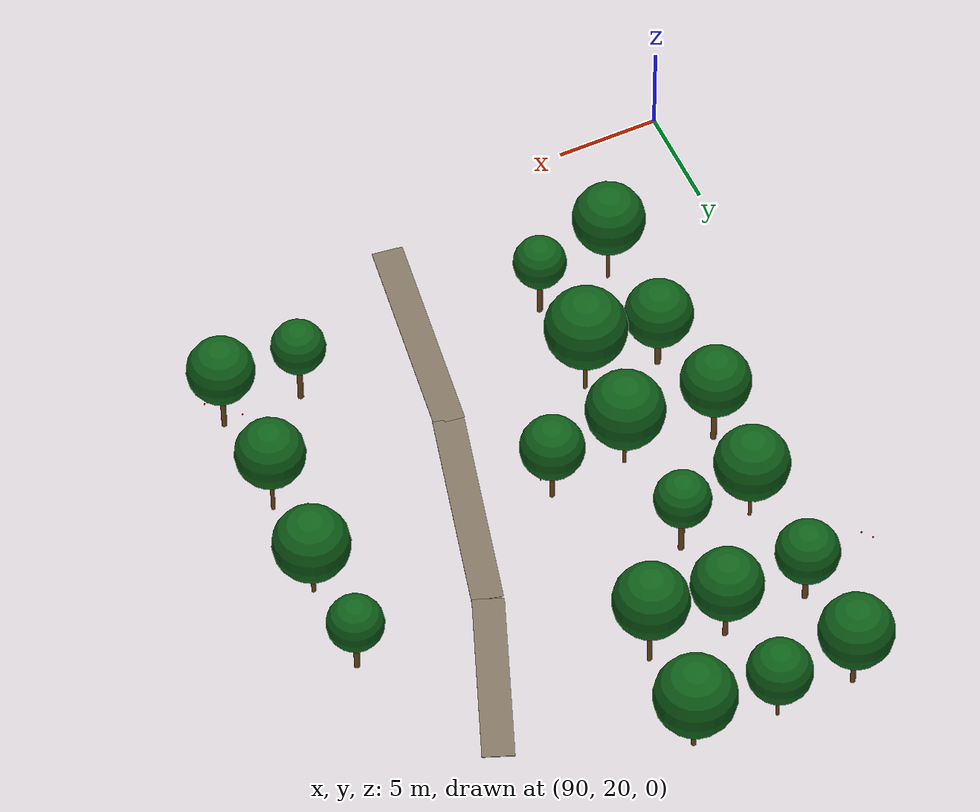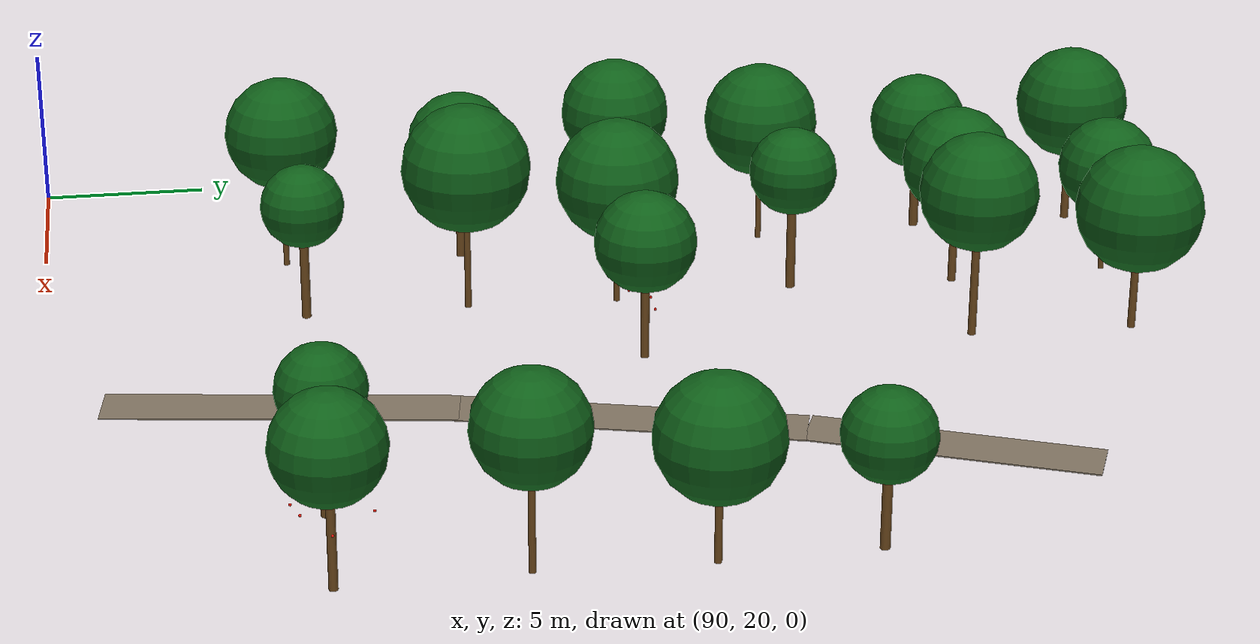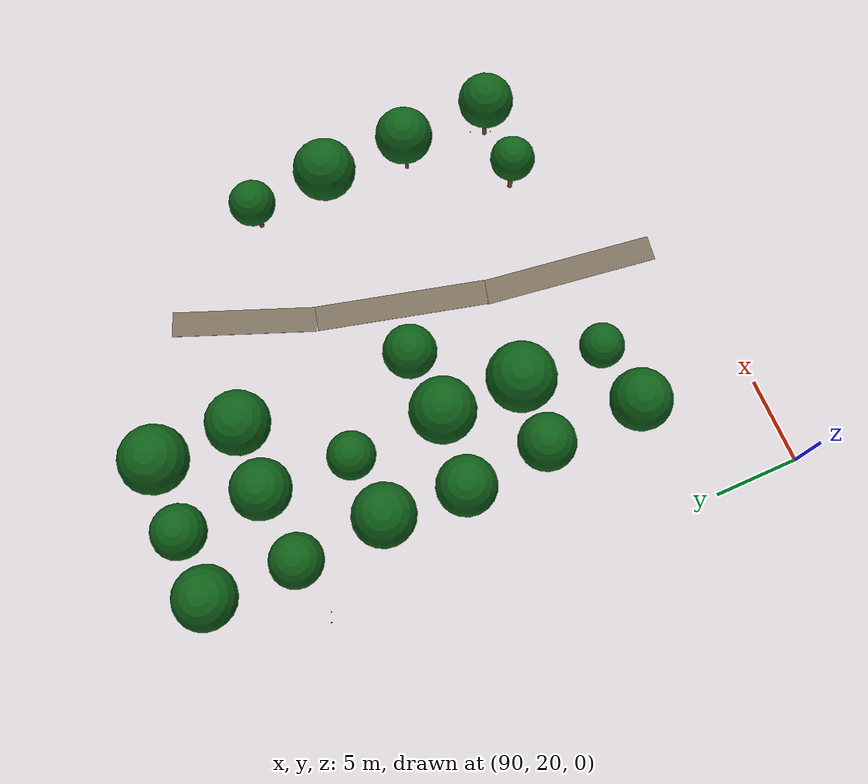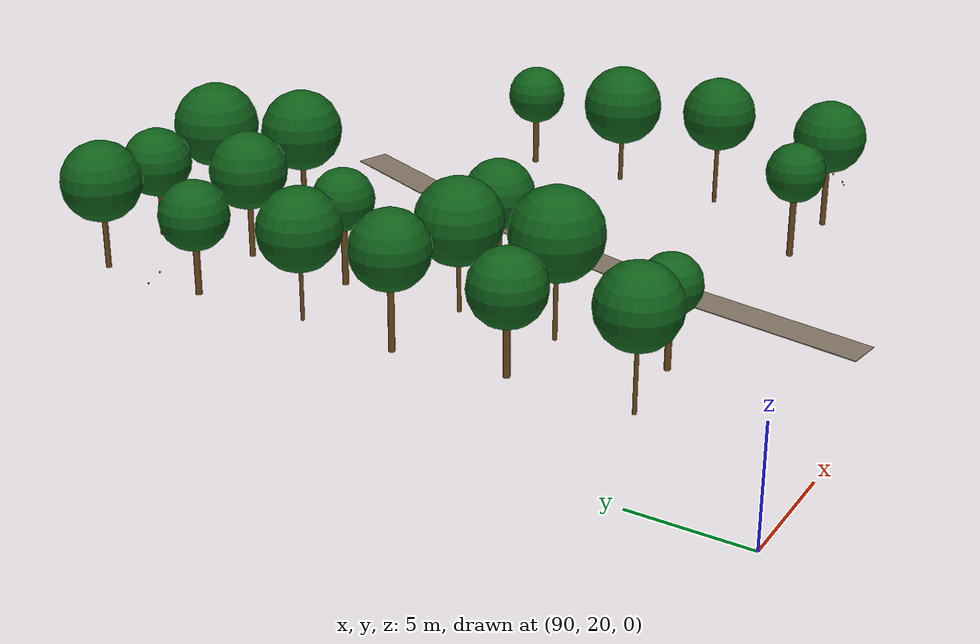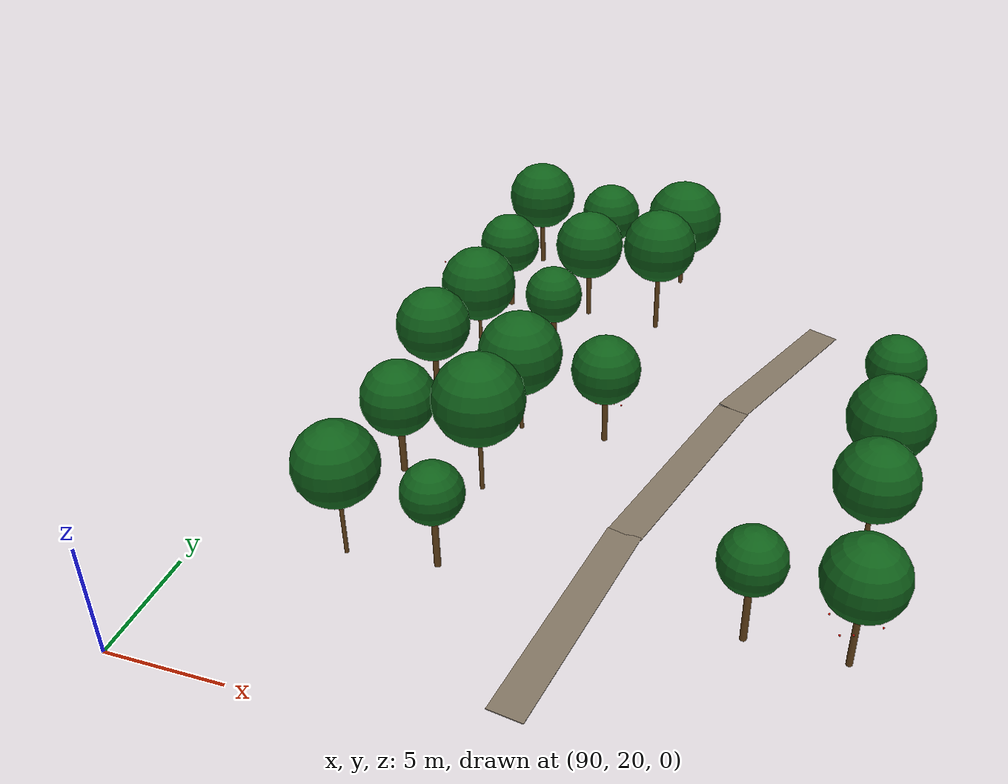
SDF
<sdf version="1.9">
 <world name="cheongsong_orchard">
  <model name="road_36">
   <static>true</static>
   <pose>105.6 26.9 0.02 0 0 1.4321</pose>
   <link name="link">
    <collision name="collision">
     <geometry><box><size>10.4 1.5 0.04</size></box></geometry>
     <surface><friction><ode><mu>0.9</mu><mu2>0.9</mu2></ode></friction></surface>
    </collision>
    <visual name="visual">
     <geometry><box><size>10.4 1.5 0.04</size></box></geometry>
     <material><ambient>0.4 0.35 0.28 1</ambient><diffuse>0.5 0.45 0.38 1</diffuse></material>
    </visual>
   </link>
  </model>
  <model name="road_37">
   <static>true</static>
   <pose>107.6 36.9 0.02 0 0 1.3204</pose>
   <link name="link">
    <collision name="collision">
     <geometry><box><size>10.2 1.5 0.04</size></box></geometry>
     <surface><friction><ode><mu>0.9</mu><mu2>0.9</mu2></ode></friction></surface>
    </collision>
    <visual name="visual">
     <geometry><box><size>10.2 1.5 0.04</size></box></geometry>
     <material><ambient>0.4 0.35 0.28 1</ambient><diffuse>0.5 0.45 0.38 1</diffuse></material>
    </visual>
   </link>
  </model>
  <model name="road_38">
   <static>true</static>
   <pose>110.4 45.8 0.02 0 0 1.1956</pose>
   <link name="link">
    <collision name="collision">
     <geometry><box><size>8.5 1.5 0.04</size></box></geometry>
     <surface><friction><ode><mu>0.9</mu><mu2>0.9</mu2></ode></friction></surface>
    </collision>
    <visual name="visual">
     <geometry><box><size>8.5 1.5 0.04</size></box></geometry>
     <material><ambient>0.4 0.35 0.28 1</ambient><diffuse>0.5 0.45 0.38 1</diffuse></material>
    </visual>
   </link>
  </model>
  <model name="apple_tree_1517">
   <static>true</static>
   <pose>96.04 27.54 0 0 0 0</pose>
   <link name="link">
    <collision name="trunk_col">
     <pose>0 0 1.39 0 0 0</pose>
     <geometry><cylinder><radius>0.089</radius><length>2.77</length></cylinder></geometry>
    </collision>
    <visual name="trunk_vis">
     <pose>0 0 1.39 0 0 0</pose>
     <geometry><cylinder><radius>0.089</radius><length>2.77</length></cylinder></geometry>
     <material><ambient>0.35 0.22 0.08 1</ambient><diffuse>0.45 0.30 0.12 1</diffuse></material>
    </visual>
    <collision name="canopy_col">
     <pose>0 0 4.51 0 0 0</pose>
     <geometry><sphere><radius>1.74</radius></sphere></geometry>
    </collision>
    <visual name="canopy_vis">
     <pose>0 0 4.51 0 0 0</pose>
     <geometry><sphere><radius>1.74</radius></sphere></geometry>
     <material><ambient>0.04 0.28 0.06 1</ambient><diffuse>0.06 0.38 0.10 1</diffuse></material>
    </visual>
   </link>
  </model>
  <model name="apple_tree_1518">
   <static>true</static>
   <pose>99.79 27.97 0 0 0 0</pose>
   <link name="link">
    <collision name="trunk_col">
     <pose>0 0 1.23 0 0 0</pose>
     <geometry><cylinder><radius>0.139</radius><length>2.46</length></cylinder></geometry>
    </collision>
    <visual name="trunk_vis">
     <pose>0 0 1.23 0 0 0</pose>
     <geometry><cylinder><radius>0.139</radius><length>2.46</length></cylinder></geometry>
     <material><ambient>0.35 0.22 0.08 1</ambient><diffuse>0.45 0.30 0.12 1</diffuse></material>
    </visual>
    <collision name="canopy_col">
     <pose>0 0 3.72 0 0 0</pose>
     <geometry><sphere><radius>1.27</radius></sphere></geometry>
    </collision>
    <visual name="canopy_vis">
     <pose>0 0 3.72 0 0 0</pose>
     <geometry><sphere><radius>1.27</radius></sphere></geometry>
     <material><ambient>0.04 0.28 0.06 1</ambient><diffuse>0.06 0.38 0.10 1</diffuse></material>
    </visual>
   </link>
  </model>
  <model name="apple_tree_1519">
   <static>true</static>
   <pose>112.00 27.85 0 0 0 0</pose>
   <link name="link">
    <collision name="trunk_col">
     <pose>0 0 1.31 0 0 0</pose>
     <geometry><cylinder><radius>0.141</radius><length>2.62</length></cylinder></geometry>
    </collision>
    <visual name="trunk_vis">
     <pose>0 0 1.31 0 0 0</pose>
     <geometry><cylinder><radius>0.141</radius><length>2.62</length></cylinder></geometry>
     <material><ambient>0.35 0.22 0.08 1</ambient><diffuse>0.45 0.30 0.12 1</diffuse></material>
    </visual>
    <collision name="canopy_col">
     <pose>0 0 3.92 0 0 0</pose>
     <geometry><sphere><radius>1.30</radius></sphere></geometry>
    </collision>
    <visual name="canopy_vis">
     <pose>0 0 3.92 0 0 0</pose>
     <geometry><sphere><radius>1.30</radius></sphere></geometry>
     <material><ambient>0.04 0.28 0.06 1</ambient><diffuse>0.06 0.38 0.10 1</diffuse></material>
    </visual>
   </link>
  </model>
  <model name="apple_tree_1520">
   <static>true</static>
   <pose>115.86 27.82 0 0 0 0</pose>
   <link name="link">
    <collision name="trunk_col">
     <pose>0 0 1.32 0 0 0</pose>
     <geometry><cylinder><radius>0.129</radius><length>2.65</length></cylinder></geometry>
    </collision>
    <visual name="trunk_vis">
     <pose>0 0 1.32 0 0 0</pose>
     <geometry><cylinder><radius>0.129</radius><length>2.65</length></cylinder></geometry>
     <material><ambient>0.35 0.22 0.08 1</ambient><diffuse>0.45 0.30 0.12 1</diffuse></material>
    </visual>
    <collision name="canopy_col">
     <pose>0 0 4.26 0 0 0</pose>
     <geometry><sphere><radius>1.61</radius></sphere></geometry>
    </collision>
    <visual name="canopy_vis">
     <pose>0 0 4.26 0 0 0</pose>
     <geometry><sphere><radius>1.61</radius></sphere></geometry>
     <material><ambient>0.04 0.28 0.06 1</ambient><diffuse>0.06 0.38 0.10 1</diffuse></material>
    </visual>
   </link>
  </model>
  <model name="apple_tree_1572">
   <static>true</static>
   <pose>96.08 33.07 0 0 0 0</pose>
   <link name="link">
    <collision name="trunk_col">
     <pose>0 0 1.12 0 0 0</pose>
     <geometry><cylinder><radius>0.149</radius><length>2.23</length></cylinder></geometry>
    </collision>
    <visual name="trunk_vis">
     <pose>0 0 1.12 0 0 0</pose>
     <geometry><cylinder><radius>0.149</radius><length>2.23</length></cylinder></geometry>
     <material><ambient>0.35 0.22 0.08 1</ambient><diffuse>0.45 0.30 0.12 1</diffuse></material>
    </visual>
    <collision name="canopy_col">
     <pose>0 0 3.86 0 0 0</pose>
     <geometry><sphere><radius>1.63</radius></sphere></geometry>
    </collision>
    <visual name="canopy_vis">
     <pose>0 0 3.86 0 0 0</pose>
     <geometry><sphere><radius>1.63</radius></sphere></geometry>
     <material><ambient>0.04 0.28 0.06 1</ambient><diffuse>0.06 0.38 0.10 1</diffuse></material>
    </visual>
   </link>
  </model>
  <model name="apple_tree_1573">
   <static>true</static>
   <pose>99.76 32.94 0 0 0 0</pose>
   <link name="link">
    <collision name="trunk_col">
     <pose>0 0 1.35 0 0 0</pose>
     <geometry><cylinder><radius>0.098</radius><length>2.70</length></cylinder></geometry>
    </collision>
    <visual name="trunk_vis">
     <pose>0 0 1.35 0 0 0</pose>
     <geometry><cylinder><radius>0.098</radius><length>2.70</length></cylinder></geometry>
     <material><ambient>0.35 0.22 0.08 1</ambient><diffuse>0.45 0.30 0.12 1</diffuse></material>
    </visual>
    <collision name="canopy_col">
     <pose>0 0 4.67 0 0 0</pose>
     <geometry><sphere><radius>1.97</radius></sphere></geometry>
    </collision>
    <visual name="canopy_vis">
     <pose>0 0 4.67 0 0 0</pose>
     <geometry><sphere><radius>1.97</radius></sphere></geometry>
     <material><ambient>0.04 0.28 0.06 1</ambient><diffuse>0.06 0.38 0.10 1</diffuse></material>
    </visual>
   </link>
  </model>
  <model name="apple_tree_1574">
   <static>true</static>
   <pose>115.68 33.11 0 0 0 0</pose>
   <link name="link">
    <collision name="trunk_col">
     <pose>0 0 1.35 0 0 0</pose>
     <geometry><cylinder><radius>0.101</radius><length>2.70</length></cylinder></geometry>
    </collision>
    <visual name="trunk_vis">
     <pose>0 0 1.35 0 0 0</pose>
     <geometry><cylinder><radius>0.101</radius><length>2.70</length></cylinder></geometry>
     <material><ambient>0.35 0.22 0.08 1</ambient><diffuse>0.45 0.30 0.12 1</diffuse></material>
    </visual>
    <collision name="canopy_col">
     <pose>0 0 4.36 0 0 0</pose>
     <geometry><sphere><radius>1.66</radius></sphere></geometry>
    </collision>
    <visual name="canopy_vis">
     <pose>0 0 4.36 0 0 0</pose>
     <geometry><sphere><radius>1.66</radius></sphere></geometry>
     <material><ambient>0.04 0.28 0.06 1</ambient><diffuse>0.06 0.38 0.10 1</diffuse></material>
    </visual>
   </link>
  </model>
  <model name="apple_tree_1628">
   <static>true</static>
   <pose>95.59 38.04 0 0 0 0</pose>
   <link name="link">
    <collision name="trunk_col">
     <pose>0 0 1.38 0 0 0</pose>
     <geometry><cylinder><radius>0.140</radius><length>2.77</length></cylinder></geometry>
    </collision>
    <visual name="trunk_vis">
     <pose>0 0 1.38 0 0 0</pose>
     <geometry><cylinder><radius>0.140</radius><length>2.77</length></cylinder></geometry>
     <material><ambient>0.35 0.22 0.08 1</ambient><diffuse>0.45 0.30 0.12 1</diffuse></material>
    </visual>
    <collision name="canopy_col">
     <pose>0 0 4.45 0 0 0</pose>
     <geometry><sphere><radius>1.68</radius></sphere></geometry>
    </collision>
    <visual name="canopy_vis">
     <pose>0 0 4.45 0 0 0</pose>
     <geometry><sphere><radius>1.68</radius></sphere></geometry>
     <material><ambient>0.04 0.28 0.06 1</ambient><diffuse>0.06 0.38 0.10 1</diffuse></material>
    </visual>
   </link>
  </model>
  <model name="apple_tree_1629">
   <static>true</static>
   <pose>99.92 37.53 0 0 0 0</pose>
   <link name="link">
    <collision name="trunk_col">
     <pose>0 0 1.11 0 0 0</pose>
     <geometry><cylinder><radius>0.095</radius><length>2.21</length></cylinder></geometry>
    </collision>
    <visual name="trunk_vis">
     <pose>0 0 1.11 0 0 0</pose>
     <geometry><cylinder><radius>0.095</radius><length>2.21</length></cylinder></geometry>
     <material><ambient>0.35 0.22 0.08 1</ambient><diffuse>0.45 0.30 0.12 1</diffuse></material>
    </visual>
    <collision name="canopy_col">
     <pose>0 0 4.09 0 0 0</pose>
     <geometry><sphere><radius>1.88</radius></sphere></geometry>
    </collision>
    <visual name="canopy_vis">
     <pose>0 0 4.09 0 0 0</pose>
     <geometry><sphere><radius>1.88</radius></sphere></geometry>
     <material><ambient>0.04 0.28 0.06 1</ambient><diffuse>0.06 0.38 0.10 1</diffuse></material>
    </visual>
   </link>
  </model>
  <model name="apple_tree_1630">
   <static>true</static>
   <pose>103.76 37.85 0 0 0 0</pose>
   <link name="link">
    <collision name="trunk_col">
     <pose>0 0 1.13 0 0 0</pose>
     <geometry><cylinder><radius>0.127</radius><length>2.27</length></cylinder></geometry>
    </collision>
    <visual name="trunk_vis">
     <pose>0 0 1.13 0 0 0</pose>
     <geometry><cylinder><radius>0.127</radius><length>2.27</length></cylinder></geometry>
     <material><ambient>0.35 0.22 0.08 1</ambient><diffuse>0.45 0.30 0.12 1</diffuse></material>
    </visual>
    <collision name="canopy_col">
     <pose>0 0 3.79 0 0 0</pose>
     <geometry><sphere><radius>1.53</radius></sphere></geometry>
    </collision>
    <visual name="canopy_vis">
     <pose>0 0 3.79 0 0 0</pose>
     <geometry><sphere><radius>1.53</radius></sphere></geometry>
     <material><ambient>0.04 0.28 0.06 1</ambient><diffuse>0.06 0.38 0.10 1</diffuse></material>
    </visual>
   </link>
  </model>
  <model name="apple_tree_1631">
   <static>true</static>
   <pose>115.83 38.08 0 0 0 0</pose>
   <link name="link">
    <collision name="trunk_col">
     <pose>0 0 0.99 0 0 0</pose>
     <geometry><cylinder><radius>0.107</radius><length>1.97</length></cylinder></geometry>
    </collision>
    <visual name="trunk_vis">
     <pose>0 0 0.99 0 0 0</pose>
     <geometry><cylinder><radius>0.107</radius><length>1.97</length></cylinder></geometry>
     <material><ambient>0.35 0.22 0.08 1</ambient><diffuse>0.45 0.30 0.12 1</diffuse></material>
    </visual>
    <collision name="canopy_col">
     <pose>0 0 3.79 0 0 0</pose>
     <geometry><sphere><radius>1.82</radius></sphere></geometry>
    </collision>
    <visual name="canopy_vis">
     <pose>0 0 3.79 0 0 0</pose>
     <geometry><sphere><radius>1.82</radius></sphere></geometry>
     <material><ambient>0.04 0.28 0.06 1</ambient><diffuse>0.06 0.38 0.10 1</diffuse></material>
    </visual>
   </link>
  </model>
  <model name="apple_tree_1685">
   <static>true</static>
   <pose>95.98 42.64 0 0 0 0</pose>
   <link name="link">
    <collision name="trunk_col">
     <pose>0 0 1.16 0 0 0</pose>
     <geometry><cylinder><radius>0.086</radius><length>2.32</length></cylinder></geometry>
    </collision>
    <visual name="trunk_vis">
     <pose>0 0 1.16 0 0 0</pose>
     <geometry><cylinder><radius>0.086</radius><length>2.32</length></cylinder></geometry>
     <material><ambient>0.35 0.22 0.08 1</ambient><diffuse>0.45 0.30 0.12 1</diffuse></material>
    </visual>
    <collision name="canopy_col">
     <pose>0 0 4.09 0 0 0</pose>
     <geometry><sphere><radius>1.78</radius></sphere></geometry>
    </collision>
    <visual name="canopy_vis">
     <pose>0 0 4.09 0 0 0</pose>
     <geometry><sphere><radius>1.78</radius></sphere></geometry>
     <material><ambient>0.04 0.28 0.06 1</ambient><diffuse>0.06 0.38 0.10 1</diffuse></material>
    </visual>
   </link>
  </model>
  <model name="apple_tree_1686">
   <static>true</static>
   <pose>99.66 43.01 0 0 0 0</pose>
   <link name="link">
    <collision name="trunk_col">
     <pose>0 0 1.29 0 0 0</pose>
     <geometry><cylinder><radius>0.143</radius><length>2.58</length></cylinder></geometry>
    </collision>
    <visual name="trunk_vis">
     <pose>0 0 1.29 0 0 0</pose>
     <geometry><cylinder><radius>0.143</radius><length>2.58</length></cylinder></geometry>
     <material><ambient>0.35 0.22 0.08 1</ambient><diffuse>0.45 0.30 0.12 1</diffuse></material>
    </visual>
    <collision name="canopy_col">
     <pose>0 0 3.93 0 0 0</pose>
     <geometry><sphere><radius>1.35</radius></sphere></geometry>
    </collision>
    <visual name="canopy_vis">
     <pose>0 0 3.93 0 0 0</pose>
     <geometry><sphere><radius>1.35</radius></sphere></geometry>
     <material><ambient>0.04 0.28 0.06 1</ambient><diffuse>0.06 0.38 0.10 1</diffuse></material>
    </visual>
   </link>
  </model>
  <model name="apple_tree_1687">
   <static>true</static>
   <pose>115.70 42.65 0 0 0 0</pose>
   <link name="link">
    <collision name="trunk_col">
     <pose>0 0 1.07 0 0 0</pose>
     <geometry><cylinder><radius>0.142</radius><length>2.13</length></cylinder></geometry>
    </collision>
    <visual name="trunk_vis">
     <pose>0 0 1.07 0 0 0</pose>
     <geometry><cylinder><radius>0.142</radius><length>2.13</length></cylinder></geometry>
     <material><ambient>0.35 0.22 0.08 1</ambient><diffuse>0.45 0.30 0.12 1</diffuse></material>
    </visual>
    <collision name="canopy_col">
     <pose>0 0 3.48 0 0 0</pose>
     <geometry><sphere><radius>1.34</radius></sphere></geometry>
    </collision>
    <visual name="canopy_vis">
     <pose>0 0 3.48 0 0 0</pose>
     <geometry><sphere><radius>1.34</radius></sphere></geometry>
     <material><ambient>0.04 0.28 0.06 1</ambient><diffuse>0.06 0.38 0.10 1</diffuse></material>
    </visual>
   </link>
  </model>
  <model name="apple_tree_1741">
   <static>true</static>
   <pose>95.71 47.79 0 0 0 0</pose>
   <link name="link">
    <collision name="trunk_col">
     <pose>0 0 1.06 0 0 0</pose>
     <geometry><cylinder><radius>0.144</radius><length>2.12</length></cylinder></geometry>
    </collision>
    <visual name="trunk_vis">
     <pose>0 0 1.06 0 0 0</pose>
     <geometry><cylinder><radius>0.144</radius><length>2.12</length></cylinder></geometry>
     <material><ambient>0.35 0.22 0.08 1</ambient><diffuse>0.45 0.30 0.12 1</diffuse></material>
    </visual>
    <collision name="canopy_col">
     <pose>0 0 3.62 0 0 0</pose>
     <geometry><sphere><radius>1.51</radius></sphere></geometry>
    </collision>
    <visual name="canopy_vis">
     <pose>0 0 3.62 0 0 0</pose>
     <geometry><sphere><radius>1.51</radius></sphere></geometry>
     <material><ambient>0.04 0.28 0.06 1</ambient><diffuse>0.06 0.38 0.10 1</diffuse></material>
    </visual>
   </link>
  </model>
  <model name="apple_tree_1742">
   <static>true</static>
   <pose>99.90 48.10 0 0 0 0</pose>
   <link name="link">
    <collision name="trunk_col">
     <pose>0 0 1.18 0 0 0</pose>
     <geometry><cylinder><radius>0.125</radius><length>2.35</length></cylinder></geometry>
    </collision>
    <visual name="trunk_vis">
     <pose>0 0 1.18 0 0 0</pose>
     <geometry><cylinder><radius>0.125</radius><length>2.35</length></cylinder></geometry>
     <material><ambient>0.35 0.22 0.08 1</ambient><diffuse>0.45 0.30 0.12 1</diffuse></material>
    </visual>
    <collision name="canopy_col">
     <pose>0 0 4.05 0 0 0</pose>
     <geometry><sphere><radius>1.70</radius></sphere></geometry>
    </collision>
    <visual name="canopy_vis">
     <pose>0 0 4.05 0 0 0</pose>
     <geometry><sphere><radius>1.70</radius></sphere></geometry>
     <material><ambient>0.04 0.28 0.06 1</ambient><diffuse>0.06 0.38 0.10 1</diffuse></material>
    </visual>
   </link>
  </model>
  <model name="apple_tree_1743">
   <static>true</static>
   <pose>103.59 47.88 0 0 0 0</pose>
   <link name="link">
    <collision name="trunk_col">
     <pose>0 0 1.46 0 0 0</pose>
     <geometry><cylinder><radius>0.122</radius><length>2.92</length></cylinder></geometry>
    </collision>
    <visual name="trunk_vis">
     <pose>0 0 1.46 0 0 0</pose>
     <geometry><cylinder><radius>0.122</radius><length>2.92</length></cylinder></geometry>
     <material><ambient>0.35 0.22 0.08 1</ambient><diffuse>0.45 0.30 0.12 1</diffuse></material>
    </visual>
    <collision name="canopy_col">
     <pose>0 0 4.71 0 0 0</pose>
     <geometry><sphere><radius>1.79</radius></sphere></geometry>
    </collision>
    <visual name="canopy_vis">
     <pose>0 0 4.71 0 0 0</pose>
     <geometry><sphere><radius>1.79</radius></sphere></geometry>
     <material><ambient>0.04 0.28 0.06 1</ambient><diffuse>0.06 0.38 0.10 1</diffuse></material>
    </visual>
   </link>
  </model>
  <model name="apple_tree_1797">
   <static>true</static>
   <pose>95.79 52.79 0 0 0 0</pose>
   <link name="link">
    <collision name="trunk_col">
     <pose>0 0 1.14 0 0 0</pose>
     <geometry><cylinder><radius>0.127</radius><length>2.27</length></cylinder></geometry>
    </collision>
    <visual name="trunk_vis">
     <pose>0 0 1.14 0 0 0</pose>
     <geometry><cylinder><radius>0.127</radius><length>2.27</length></cylinder></geometry>
     <material><ambient>0.35 0.22 0.08 1</ambient><diffuse>0.45 0.30 0.12 1</diffuse></material>
    </visual>
    <collision name="canopy_col">
     <pose>0 0 4.04 0 0 0</pose>
     <geometry><sphere><radius>1.76</radius></sphere></geometry>
    </collision>
    <visual name="canopy_vis">
     <pose>0 0 4.04 0 0 0</pose>
     <geometry><sphere><radius>1.76</radius></sphere></geometry>
     <material><ambient>0.04 0.28 0.06 1</ambient><diffuse>0.06 0.38 0.10 1</diffuse></material>
    </visual>
   </link>
  </model>
  <model name="apple_tree_1798">
   <static>true</static>
   <pose>99.66 52.96 0 0 0 0</pose>
   <link name="link">
    <collision name="trunk_col">
     <pose>0 0 0.99 0 0 0</pose>
     <geometry><cylinder><radius>0.088</radius><length>1.97</length></cylinder></geometry>
    </collision>
    <visual name="trunk_vis">
     <pose>0 0 0.99 0 0 0</pose>
     <geometry><cylinder><radius>0.088</radius><length>1.97</length></cylinder></geometry>
     <material><ambient>0.35 0.22 0.08 1</ambient><diffuse>0.45 0.30 0.12 1</diffuse></material>
    </visual>
    <collision name="canopy_col">
     <pose>0 0 3.50 0 0 0</pose>
     <geometry><sphere><radius>1.53</radius></sphere></geometry>
    </collision>
    <visual name="canopy_vis">
     <pose>0 0 3.50 0 0 0</pose>
     <geometry><sphere><radius>1.53</radius></sphere></geometry>
     <material><ambient>0.04 0.28 0.06 1</ambient><diffuse>0.06 0.38 0.10 1</diffuse></material>
    </visual>
   </link>
  </model>
  <model name="apple_tree_1799">
   <static>true</static>
   <pose>103.75 52.80 0 0 0 0</pose>
   <link name="link">
    <collision name="trunk_col">
     <pose>0 0 1.00 0 0 0</pose>
     <geometry><cylinder><radius>0.117</radius><length>2.00</length></cylinder></geometry>
    </collision>
    <visual name="trunk_vis">
     <pose>0 0 1.00 0 0 0</pose>
     <geometry><cylinder><radius>0.117</radius><length>2.00</length></cylinder></geometry>
     <material><ambient>0.35 0.22 0.08 1</ambient><diffuse>0.45 0.30 0.12 1</diffuse></material>
    </visual>
    <collision name="canopy_col">
     <pose>0 0 3.93 0 0 0</pose>
     <geometry><sphere><radius>1.93</radius></sphere></geometry>
    </collision>
    <visual name="canopy_vis">
     <pose>0 0 3.93 0 0 0</pose>
     <geometry><sphere><radius>1.93</radius></sphere></geometry>
     <material><ambient>0.04 0.28 0.06 1</ambient><diffuse>0.06 0.38 0.10 1</diffuse></material>
    </visual>
   </link>
  </model>
  <model name="apple_1520_0">
   <static>true</static>
   <pose>115.81 27.03 2.26 0 0 0</pose>
   <link name="link">
    <visual name="visual">
     <geometry><sphere><radius>0.04</radius></sphere></geometry>
     <material><ambient>0.7 0.05 0.02 1</ambient><diffuse>0.9 0.10 0.05 1</diffuse></material>
    </visual>
   </link>
  </model>
  <model name="apple_1520_1">
   <static>true</static>
   <pose>115.35 26.80 2.34 0 0 0</pose>
   <link name="link">
    <visual name="visual">
     <geometry><sphere><radius>0.04</radius></sphere></geometry>
     <material><ambient>0.7 0.05 0.02 1</ambient><diffuse>0.9 0.10 0.05 1</diffuse></material>
    </visual>
   </link>
  </model>
  <model name="apple_1520_2">
   <static>true</static>
   <pose>115.38 29.00 2.01 0 0 0</pose>
   <link name="link">
    <visual name="visual">
     <geometry><sphere><radius>0.04</radius></sphere></geometry>
     <material><ambient>0.7 0.05 0.02 1</ambient><diffuse>0.9 0.10 0.05 1</diffuse></material>
    </visual>
   </link>
  </model>
  <model name="apple_1520_3">
   <static>true</static>
   <pose>114.88 27.91 2.13 0 0 0</pose>
   <link name="link">
    <visual name="visual">
     <geometry><sphere><radius>0.04</radius></sphere></geometry>
     <material><ambient>0.7 0.05 0.02 1</ambient><diffuse>0.9 0.10 0.05 1</diffuse></material>
    </visual>
   </link>
  </model>
  <model name="apple_1520_4">
   <static>true</static>
   <pose>116.76 27.82 2.14 0 0 0</pose>
   <link name="link">
    <visual name="visual">
     <geometry><sphere><radius>0.04</radius></sphere></geometry>
     <material><ambient>0.7 0.05 0.02 1</ambient><diffuse>0.9 0.10 0.05 1</diffuse></material>
    </visual>
   </link>
  </model>
  <model name="apple_1630_0">
   <static>true</static>
   <pose>103.27 38.09 1.71 0 0 0</pose>
   <link name="link">
    <visual name="visual">
     <geometry><sphere><radius>0.04</radius></sphere></geometry>
     <material><ambient>0.7 0.05 0.02 1</ambient><diffuse>0.9 0.10 0.05 1</diffuse></material>
    </visual>
   </link>
  </model>
  <model name="apple_1630_1">
   <static>true</static>
   <pose>103.26 37.89 2.33 0 0 0</pose>
   <link name="link">
    <visual name="visual">
     <geometry><sphere><radius>0.04</radius></sphere></geometry>
     <material><ambient>0.7 0.05 0.02 1</ambient><diffuse>0.9 0.10 0.05 1</diffuse></material>
    </visual>
   </link>
  </model>
  <model name="apple_1630_2">
   <static>true</static>
   <pose>104.44 38.05 1.89 0 0 0</pose>
   <link name="link">
    <visual name="visual">
     <geometry><sphere><radius>0.04</radius></sphere></geometry>
     <material><ambient>0.7 0.05 0.02 1</ambient><diffuse>0.9 0.10 0.05 1</diffuse></material>
    </visual>
   </link>
  </model>
  <model name="apple_1630_3">
   <static>true</static>
   <pose>104.32 37.29 2.49 0 0 0</pose>
   <link name="link">
    <visual name="visual">
     <geometry><sphere><radius>0.04</radius></sphere></geometry>
     <material><ambient>0.7 0.05 0.02 1</ambient><diffuse>0.9 0.10 0.05 1</diffuse></material>
    </visual>
   </link>
  </model>
  <model name="apple_1740_0">
   <static>true</static>
   <pose>92.63 47.18 2.45 0 0 0</pose>
   <link name="link">
    <visual name="visual">
     <geometry><sphere><radius>0.04</radius></sphere></geometry>
     <material><ambient>0.7 0.05 0.02 1</ambient><diffuse>0.9 0.10 0.05 1</diffuse></material>
    </visual>
   </link>
  </model>
  <model name="apple_1740_2">
   <static>true</static>
   <pose>92.16 47.41 2.09 0 0 0</pose>
   <link name="link">
    <visual name="visual">
     <geometry><sphere><radius>0.04</radius></sphere></geometry>
     <material><ambient>0.7 0.05 0.02 1</ambient><diffuse>0.9 0.10 0.05 1</diffuse></material>
    </visual>
   </link>
  </model>
 </world>
</sdf>
